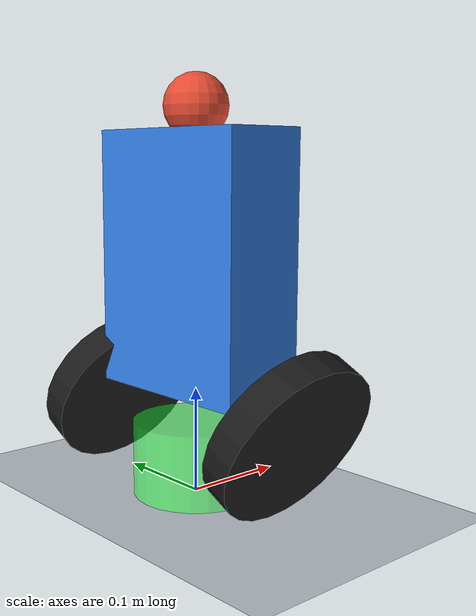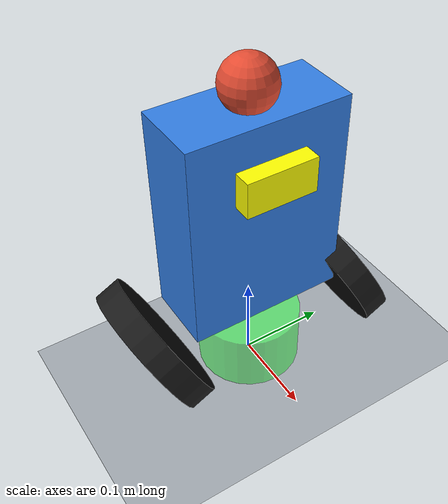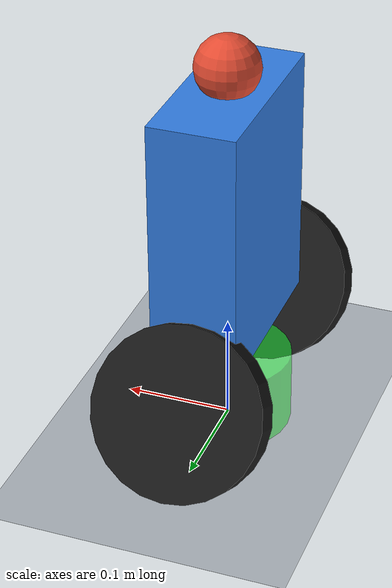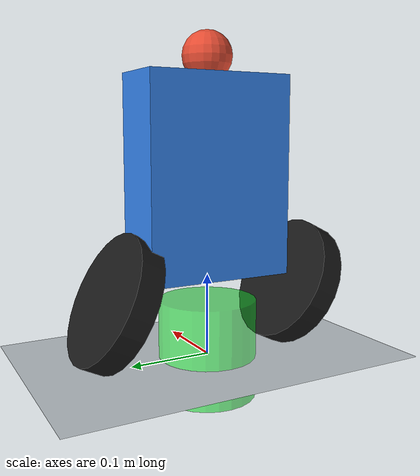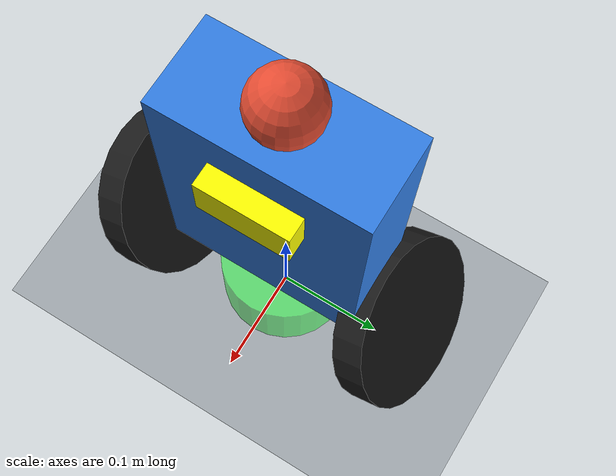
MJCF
<mujoco model="robot scene">
  <compiler angle="radian" inertiafromgeom="true"/>
  <option gravity="0 0 -9.81" timestep="0.00002" integrator="implicitfast"/>

  <include file="robot.xml"/>

  <statistic center="0 0 0.1" extent="0.8"/>

  <visual>
    <headlight diffuse="0.6 0.6 0.6" ambient="0.3 0.3 0.3" specular="0 0 0"/>
    <rgba haze="0.15 0.25 0.35 1"/>
    <global azimuth="120" elevation="-20"/>
  </visual>

  <asset>
    <texture type="skybox" builtin="gradient" rgb1="0.8 0.8 0.8" rgb2="0 0 0" width="512" height="3072"/>
    <texture type="2d" name="groundplane" builtin="checker" mark="edge" rgb1="0.2 0.3 0.4" rgb2="0.1 0.2 0.3"
      markrgb="0.8 0.8 0.8" width="300" height="300"/>
    <material name="groundplane" texture="groundplane" texuniform="true" texrepeat="5 5" reflectance="0.2"/>
    <texture type="2d" name="wheel_texture" builtin="checker" mark="edge" rgb1="0.0 0.0 0.0" rgb2="0.2 0.2 0.2"
      markrgb="0.3 0.3 0.3" width="300" height="300"/>
    <material name="wheel_material" texture="wheel_texture" texuniform="true" texrepeat="5 5"/>
  </asset>

  <worldbody>
    <light pos="0 0 1.5" dir="-0.5 -0.5 -1" directional="true"/>
    <geom name="floor" size="0 0 0.05" pos="0 0 -0.02" type="plane" material="groundplane"/>
  </worldbody>

  <contact>
    <pair geom1="floor" geom2="l_wheel_geom" friction="0.9 0.9 0.1" solref="0.02 0.5" solimp="0.5 0.5 0.002"/>
    <pair geom1="floor" geom2="r_wheel_geom" friction="0.9 0.9 0.1" solref="0.02 0.5" solimp="0.5 0.5 0.002"/>
  </contact>

</mujoco>

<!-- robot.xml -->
<mujoco model="balance_bot">
  <option timestep="0.002" integrator="implicitfast"/>
  <visual><global offwidth="640" offheight="480"/></visual>
  <asset>
    <texture name="grid" type="2d" builtin="checker" rgb1=".25 .3 .35" rgb2=".18 .22 .27"
             width="300" height="300"/>
    <material name="grid" texture="grid" texrepeat="12 12" reflectance="0.1"/>
  </asset>
  <worldbody>
    <light pos="0 0 3" dir="0 0 -1"/>
    <geom name="floor" type="plane" size="5 5 0.1" material="grid"
          friction="1 0.005 0.0001"/>
    <site name="target" pos="0 0 0.01" size="0.06 0.06 0.004" type="cylinder"
          rgba="0.1 0.9 0.2 0.6"/>
    <body name="chassis" pos="0 0 0.08">
      <freejoint name="root"/>
      <geom name="body" type="box" size="0.04 0.09 0.12" pos="0 0 0.14" mass="1.5"
            rgba="0.2 0.5 0.9 1"/>
      <geom name="head" type="sphere" size="0.03" pos="0 0 0.28" mass="0.05"
            rgba="0.9 0.3 0.2 1"/>
      <geom name="nose" type="box" size="0.01 0.04 0.02" pos="0.05 0 0.2" mass="0.001"
            rgba="1 1 0 1"/>
      <body name="wheel_l" pos="0 0.12 0">
        <joint name="wl" type="hinge" axis="0 1 0" damping="0.002"/>
        <geom name="wl_geom" type="cylinder" size="0.08 0.015" euler="90 0 0" mass="0.15"
              friction="1 0.005 0.0001" rgba="0.1 0.1 0.1 1"/>
      </body>
      <body name="wheel_r" pos="0 -0.12 0">
        <joint name="wr" type="hinge" axis="0 1 0" damping="0.002"/>
        <geom name="wr_geom" type="cylinder" size="0.08 0.015" euler="90 0 0" mass="0.15"
              friction="1 0.005 0.0001" rgba="0.1 0.1 0.1 1"/>
      </body>
    </body>
  </worldbody>
  <actuator>
    <motor name="motor_l" joint="wl" gear="0.6" ctrlrange="-1 1"/>
    <motor name="motor_r" joint="wr" gear="0.6" ctrlrange="-1 1"/>
  </actuator>
</mujoco>
